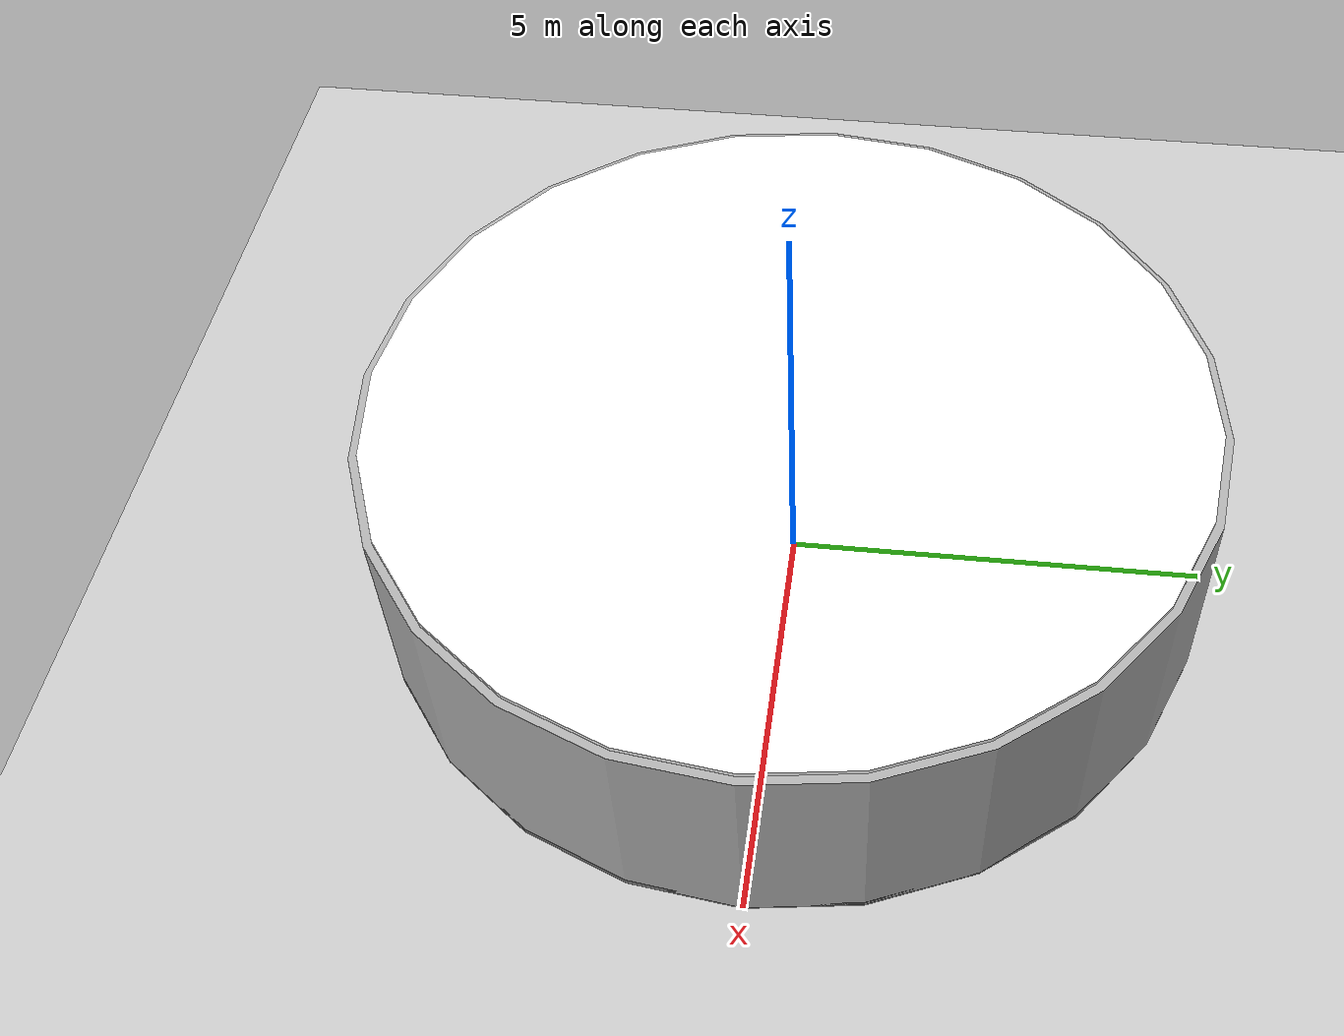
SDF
<?xml version="1.0" ?>
<sdf version="1.6">
  <world name="circular_room_world">
    <include>
      <uri>model://sun</uri>
    </include>
    <include>
      <uri>model://ground_plane</uri>
    </include>

    <model name="circular_room">
      <static>true</static>

      <!-- Floor -->
      <link name="floor">
        <collision name="floor_collision">
          <geometry>
            <cylinder>
              <radius>5</radius>
              <length>0.1</length>
            </cylinder>
          </geometry>
        </collision>
        <visual name="floor_visual">
          <geometry>
            <cylinder>
              <radius>5</radius>
              <length>0.1</length>
            </cylinder>
          </geometry>
          <material>
            <ambient>0.5 0.5 0.5 1</ambient>
          </material>
        </visual>
      </link>

      <!-- Walls -->
      <link name="walls">
        <pose>0 0 1.25 0 0 0</pose>
        <collision name="collision">
          <geometry>
            <cylinder>
              <radius>5</radius>
              <length>2.5</length>
            </cylinder>
          </geometry>
          <surface>
            <contact>
              <collide_without_contact>true</collide_without_contact>
            </contact>
          </surface>
        </collision>
        <visual name="visual">
          <geometry>
            <cylinder>
              <radius>5</radius>
              <length>2.5</length>
            </cylinder>
          </geometry>
          <material>
            <ambient>0.7 0.7 0.7 1</ambient>
          </material>
        </visual>
      </link>

      <!-- Inner space (to make it hollow) -->
      <link name="inner_space">
        <pose>0 0 1.25 0 0 0</pose>
        <collision name="collision">
          <geometry>
            <cylinder>
              <radius>4.9</radius>
              <length>2.6</length>
            </cylinder>
          </geometry>
          <surface>
            <contact>
              <collide_without_contact>true</collide_without_contact>
            </contact>
          </surface>
        </collision>
        <visual name="visual">
          <geometry>
            <cylinder>
              <radius>4.9</radius>
              <length>2.6</length>
            </cylinder>
          </geometry>
          <material>
            <ambient>1 1 1 0</ambient>
          </material>
        </visual>
      </link>
    </model>
  </world>
</sdf>
